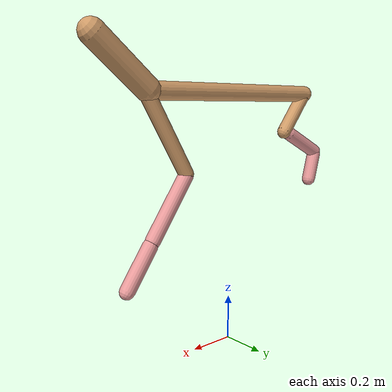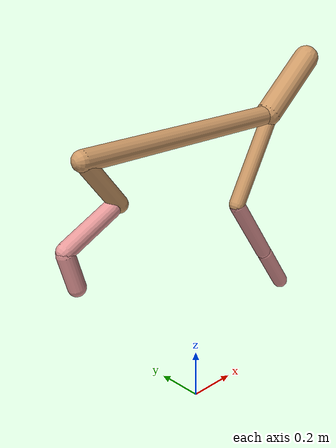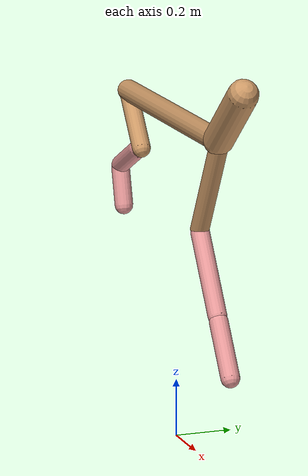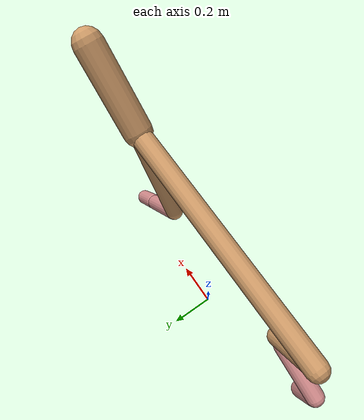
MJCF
<mujoco model="cheetah">
  <compiler angle="radian" coordinate="local" inertiafromgeom="true" settotalmass="14" />
  <default>
    <joint armature=".1" damping=".01" limited="true" solimplimit="0 .8 .03" solreflimit=".02 1" stiffness="8" />
    <geom conaffinity="0" condim="3" contype="1" friction="0.8 .1 .1" rgba="0.8 0.6 .4 1" solimp="0.0 0.8 0.01" solref="0.02 1" />
    <motor ctrllimited="true" ctrlrange="-1 1" />
  </default>
  <size nstack="300000" nuser_geom="1" />
  <option gravity="0 0 -9.81" timestep="0.01" />
  <worldbody>
    <body name="torso" pos="0.0 0.0 1.1198126710913345">
      <joint armature="0" axis="1 0 0" damping="0" limited="false" name="ignorex" pos="0 0 0" stiffness="0" type="slide" />
      <joint armature="0" axis="0 0 1" damping="0" limited="false" name="ignorez" pos="0 0 0" stiffness="0" type="slide" />
      <joint armature="0" axis="0 1 0" damping="0" limited="false" name="ignorey" pos="0 0 0" stiffness="0" type="hinge" />
      <geom fromto="-0.5 0.0 0.0 0.43124481078204185 0.0 0.0" name="torso" size="0.03766394264147451" type="capsule" />
      <geom axisangle="0 1 0 .87" name="head" pos="0.5312448107820419 0.0 0.1" size="0.0514102680297264 0.15" type="capsule" />

      <body name="bthigh" pos="-.5 0 0">
        <joint axis="0 1 0" damping="6" name="bthigh" pos="0 0 0" range="-.52 1.05" stiffness="240" type="hinge" />
        <geom axisangle="0 1 0 -3.8" name="bthigh" pos="0.07509022248921014 0.0 -0.09761728923597318" size="0.0322 0.10414492721749632" type="capsule" />
        <body name="bshin" pos="0.11018044497842028 0.0 -0.18523457847194635">
          <joint axis="0 1 0" damping="4.5" name="bshin" pos="0 0 0" range="-.785 .785" stiffness="180" type="hinge" />
          <geom axisangle="0 1 0 -2.03" name="bshin" pos="-0.1021980469100498 0.0 -0.0510990234550249" rgba="0.9 0.6 0.6 1" size="0.0322 0.10773613160430655" type="capsule" />
          <body name="bfoot" pos="-0.2043960938200996 0.0 -0.1021980469100498">
            <joint axis="0 1 0" damping="3" name="bfoot" pos="0 0 0" range="-.4 .785" stiffness="120" type="hinge" />
            <geom axisangle="0 1 0 -.27" name="bfoot" pos="0.022174378749719427 0.0 -0.07169715795742615" rgba="0.9 0.6 0.6 1" size="0.0322 0.06751464247203211" type="capsule" />
            <inertial mass="10" />
          </body>
        </body>
      </body>
      <body name="fthigh" pos="0.4312448107820419 0.0 0.0">
        <joint axis="0 1 0" damping="4.5" name="fthigh" pos="0 0 0" range="-1.5 0.8" stiffness="180" type="hinge" />
        <geom axisangle="0 1 0 .52" name="fthigh" pos="-0.09942853730934725 0.0 -0.1704489211017381" size="0.0322 0.19140490089450576" type="capsule" />
        <body name="fshin" pos="-0.1988570746186945 0.0 -0.3408978422034762">
          <joint axis="0 1 0" damping="3" name="fshin" pos="0 0 0" range="-1.2 1.1" stiffness="120" type="hinge" />
          <geom axisangle="0 1 0 -.6" name="fshin" pos="0.0922535705550872 0.0 -0.12773571307627457" rgba="0.9 0.6 0.6 1" size="0.0322 0.15254826687832787" type="capsule" />
          <body name="ffoot" pos="0.1845071411101744 0.0 -0.25547142615254914">
            <joint axis="0 1 0" damping="1.5" name="ffoot" pos="0 0 0" range="-3.1 -0.3" stiffness="60" type="hinge" />
            <geom axisangle="0 1 0 -.6" name="ffoot" pos="0.06162257554137712 0.0 -0.0958573397310311" rgba="0.9 0.6 0.6 1" size="0.0322 0.10073942152342409" type="capsule" />
            <inertial mass="10" />
          </body>
        </body>
      </body>
    </body>
  </worldbody>
  <actuator>
    <motor gear="120" joint="bthigh" name="bthigh" />
    <motor gear="90" joint="bshin" name="bshin" />
    <motor gear="60" joint="bfoot" name="bfoot" />
    <motor gear="120" joint="fthigh" name="fthigh" />
    <motor gear="60" joint="fshin" name="fshin" />
    <motor gear="30" joint="ffoot" name="ffoot" />
  </actuator>
</mujoco>
